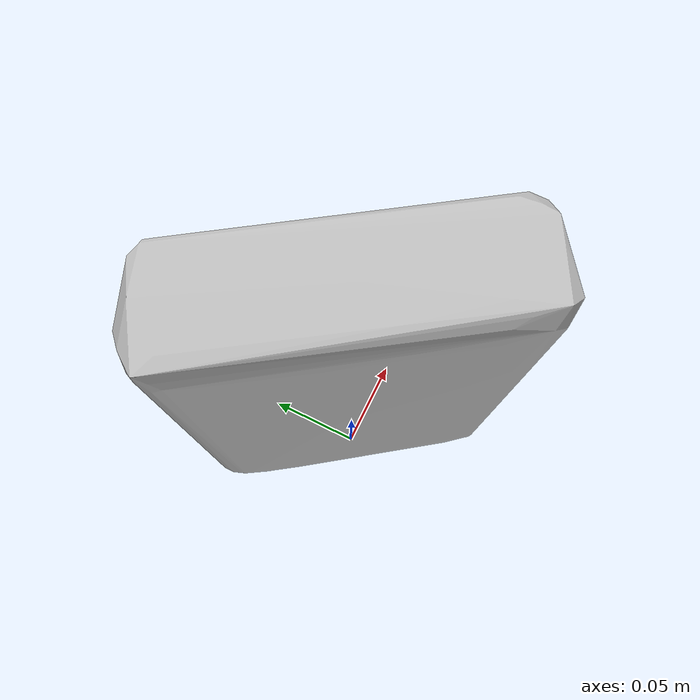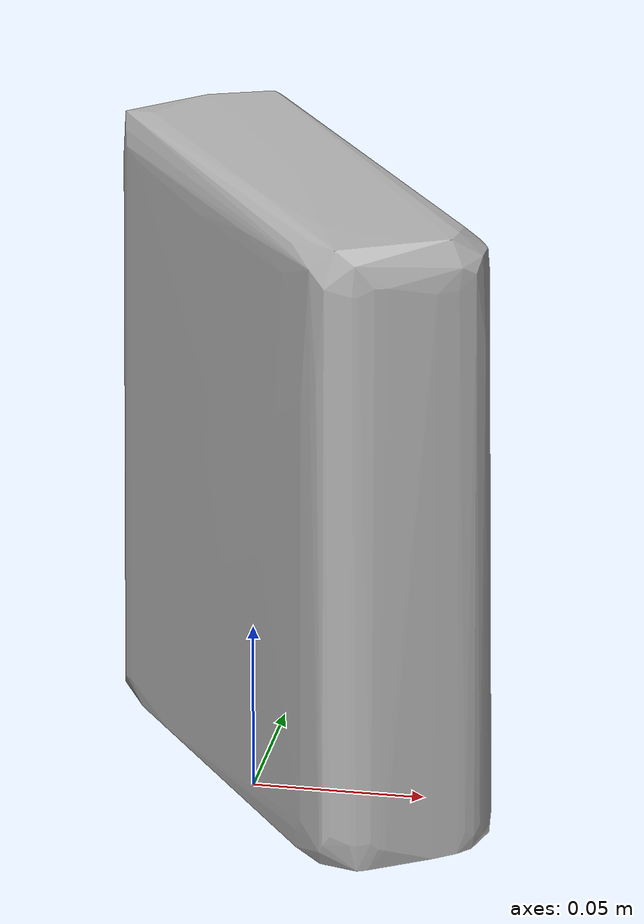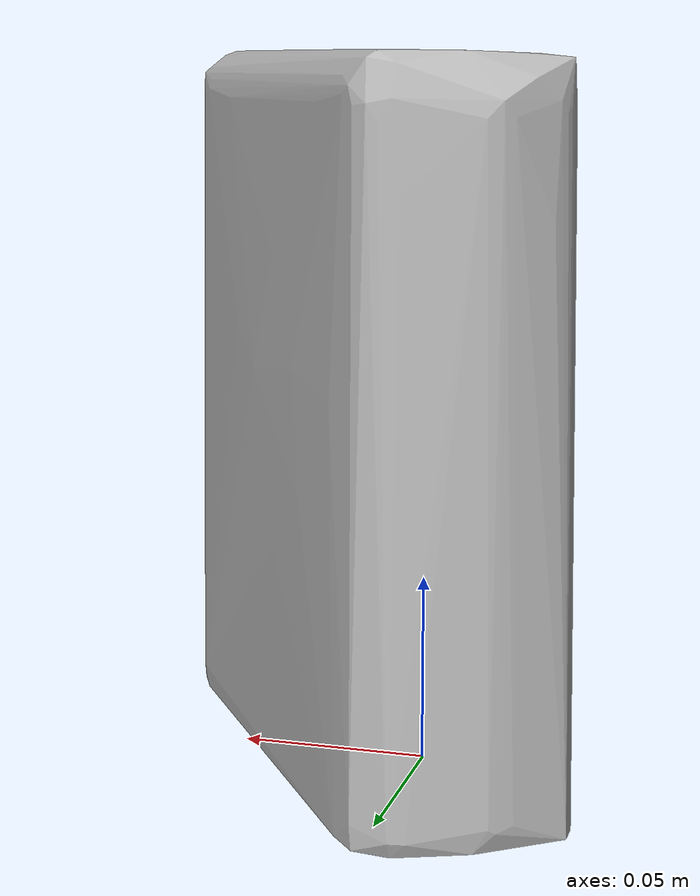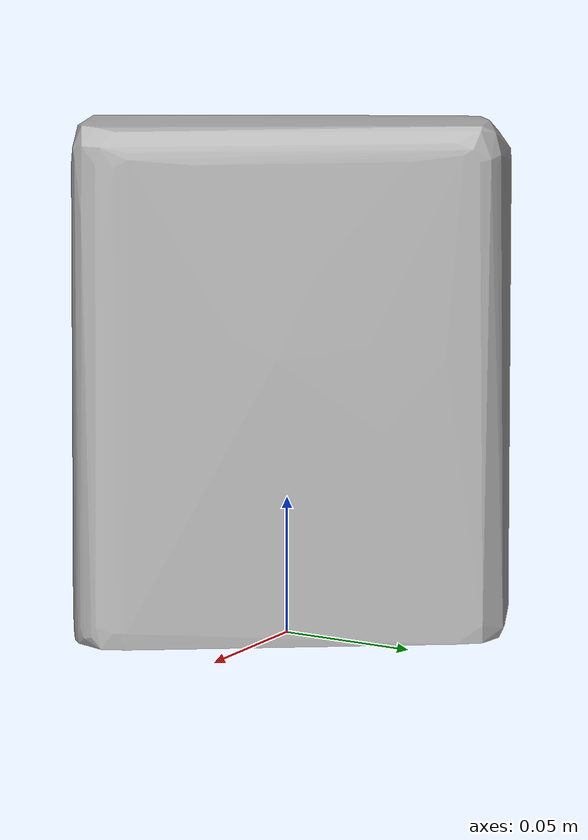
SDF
<?xml version='1.0'?>
<sdf version="1.4">
  <model name="sunkist_fruit_snacks_mixed_fruit">
    <static>false</static>
    <link name="link">
      <inertial>
        <pose>0.012707241908291431 0.008493423830273888 0.09413065934663982 -3.139623359734552 0.0015123422590683658 -2.537163525772487</pose>
        <mass>0.0550531794213211</mass>
        <inertia>
          <ixx>0.0007148026824433821</ixx>
          <ixy>6.084437525052166e-20</ixy>
          <ixz>-8.596480474000057e-22</ixz>
          <iyy>0.00046088146523096075</iyy>
          <iyz>1.5163917543653584e-21</iyz>
          <izz>0.00033448157523593313</izz>
        </inertia>
      </inertial>
      <collision name="collision">
        <geometry>
          <mesh>
            <!-- Use a downsampled mesh for collisions -->
            <uri>model:///sunkist_fruit_snacks_mixed_fruit/sunkist_fruit_snacks_mixed_fruit_250_collision.obj</uri>
	        </mesh>
        </geometry>
        <surface>
      </surface>
      </collision>
      <visual name="visual">
        <geometry>
          <mesh>
            <uri>model:///sunkist_fruit_snacks_mixed_fruit/optimized_tsdf_texture_mapped_mesh.obj</uri>
	        </mesh>
        </geometry>
        <material>
          <script>
            <uri>model:///sunkist_fruit_snacks_mixed_fruit/sunkist_fruit_snacks_mixed_fruit.material</uri>
            <name>sunkist_fruit_snacks_mixed_fruit</name>
          </script>
        </material>
      </visual>
    </link>
  </model>
</sdf>
